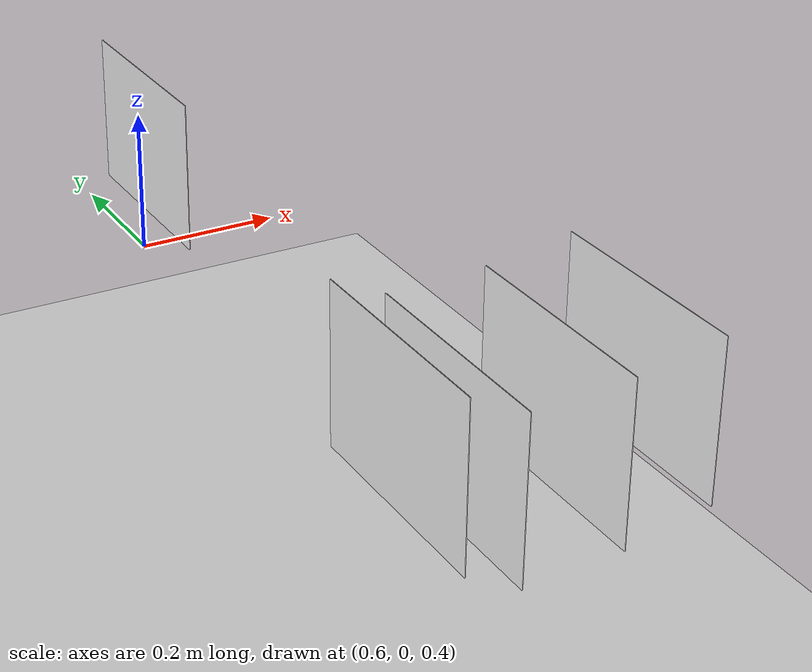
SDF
<sdf version="1.7">
 <world name="default">
  <physics name="normal" type="ode">
   <real_time_update_rate>1000</real_time_update_rate>
   <max_step_size>0.001</max_step_size>
   <real_time_factor>1</real_time_factor>
  </physics>
  <model name="ground_plane">
   <static>1</static>
   <link name="link">
    <collision name="collision">
     <geometry><plane><normal>0 0 1</normal><size>100 100</size></plane></geometry>
     <surface>
      <contact><collide_bitmask>65535</collide_bitmask></contact>
      <friction><ode><mu>100</mu><mu2>50</mu2></ode></friction>
     </surface>
    </collision>
    <visual name="visual">
     <cast_shadows>0</cast_shadows>
     <geometry><plane><normal>0 0 1</normal><size>100 100</size></plane></geometry>
     <material>
      <script><uri>file://media/materials/scripts/gazebo.material</uri><name>Gazebo/Grey</name></script>
     </material>
    </visual>
   </link>
  </model>
  <light name="sun" type="directional">
   <pose>0 0 10 0 -0 0</pose>
   <diffuse>0.8 0.8 0.8 1</diffuse>
   <specular>0.2 0.2 0.2 1</specular>
   <attenuation>
    <range>1000</range>
    <constant>0.9</constant>
    <linear>0.01</linear>
    <quadratic>0.001</quadratic>
   </attenuation>
   <direction>-0.5 0.1 -0.9</direction>
   <spot><inner_angle>0</inner_angle><outer_angle>0</outer_angle><falloff>0</falloff></spot>
  </light>
  <gravity>0 0 -9.8</gravity>
  <magnetic_field>6e-06 2.3e-05 -4.2e-05</magnetic_field>
  <atmosphere type="adiabatic"/>
  <scene><ambient>0.4 0.4 0.4 1</ambient><background>0.7 0.7 0.7 1</background><shadows>1</shadows></scene>
  <spherical_coordinates>
   <surface_model>EARTH_WGS84</surface_model>
   <latitude_deg>0</latitude_deg>
   <longitude_deg>0</longitude_deg>
   <elevation>0</elevation>
   <heading_deg>0</heading_deg>
  </spherical_coordinates>
  <light name="user_point_light_0" type="point">
   <pose>-0.54175 0.748562 1 0 -0 0</pose>
   <diffuse>0.5 0.5 0.5 1</diffuse>
   <specular>0.1 0.1 0.1 1</specular>
   <attenuation>
    <range>20</range>
    <constant>0.5</constant>
    <linear>0.01</linear>
    <quadratic>0.001</quadratic>
   </attenuation>
   <cast_shadows>0</cast_shadows>
   <direction>0 0 -1</direction>
   <spot><inner_angle>0</inner_angle><outer_angle>0</outer_angle><falloff>0</falloff></spot>
  </light>
  <light name="user_point_light_1" type="point">
   <pose>1.07884 2.88556 1 0 -0 0</pose>
   <diffuse>0.5 0.5 0.5 1</diffuse>
   <specular>0.1 0.1 0.1 1</specular>
   <attenuation>
    <range>20</range>
    <constant>0.5</constant>
    <linear>0.01</linear>
    <quadratic>0.001</quadratic>
   </attenuation>
   <cast_shadows>0</cast_shadows>
   <direction>0 0 -1</direction>
   <spot><inner_angle>0</inner_angle><outer_angle>0</outer_angle><falloff>0</falloff></spot>
  </light>
  <light name="user_point_light_2" type="point">
   <pose>1.00577 -0.149182 1 0 -0 0</pose>
   <diffuse>0.5 0.5 0.5 1</diffuse>
   <specular>0.1 0.1 0.1 1</specular>
   <attenuation>
    <range>20</range>
    <constant>0.5</constant>
    <linear>0.01</linear>
    <quadratic>0.001</quadratic>
   </attenuation>
   <cast_shadows>0</cast_shadows>
   <direction>0 0 -1</direction>
   <spot><inner_angle>0</inner_angle><outer_angle>0</outer_angle><falloff>0</falloff></spot>
  </light>
  <model name="marker_0">
   <link name="marker">
    <visual name="visual">
     <geometry><box><size>0.21 0.29 1e-05</size></box></geometry>
     <material>
      <script>
       <uri>model://marker_0/materials/scripts</uri>
       <uri>model://marker_0/materials/textures</uri>
       <name>ArucoVisualMarker0/Marker</name>
      </script>
      <ambient>1 1 1 1</ambient>
      <diffuse>1 1 1 1</diffuse>
      <specular>0 0 0 1</specular>
      <emissive>1 1 1 0</emissive>
      <shader type="vertex"><normal_map>__default__</normal_map></shader>
     </material>
    </visual>
    <collision name="collision"><geometry><box><size>0.21 0.29 1e-05</size></box></geometry></collision>
   </link>
   <link name="marker_pad">
    <pose relative_to="marker">0 0 -0.001 0 -0 0</pose>
    <visual name="visual">
     <geometry><box><size>0.21 0.29 1e-05</size></box></geometry>
     <material>
      <lighting>1</lighting>
      <script><uri>file://media/materials/scripts/gazebo.material</uri><name>Gazebo/White</name></script>
      <ambient>0.3 0.3 0.3 1</ambient>
      <diffuse>0.7 0.7 0.7 1</diffuse>
      <specular>0.01 0.01 0.01 1</specular>
      <emissive>1 1 1 0</emissive>
      <shader type="vertex"><normal_map>__default__</normal_map></shader>
     </material>
    </visual>
    <collision name="collision"><geometry><box><size>0.21 0.29 1e-05</size></box></geometry></collision>
   </link>
   <joint name="marker_JOINT_marker_pad" type="revolute">
    <parent>marker</parent>
    <child>marker_pad</child>
    <axis>
     <xyz>0 0 1</xyz>
     <limit><upper>0</upper><lower>0</lower></limit>
     <dynamics><spring_reference>0</spring_reference><spring_stiffness>0</spring_stiffness></dynamics>
    </axis>
   </joint>
   <static>1</static>
   <pose>0.58821 -0.864663 0.545557 0 -1.5691 0</pose>
  </model>
  <model name="marker_1">
   <link name="marker">
    <visual name="visual">
     <geometry><box><size>0.21 0.29 1e-05</size></box></geometry>
     <material>
      <script>
       <uri>model://marker_1/materials/scripts</uri>
       <uri>model://marker_1/materials/textures</uri>
       <name>ArucoVisualMarker1/Marker</name>
      </script>
      <ambient>1 1 1 1</ambient>
      <diffuse>1 1 1 1</diffuse>
      <specular>0 0 0 1</specular>
      <emissive>1 1 1 0</emissive>
      <shader type="vertex"><normal_map>__default__</normal_map></shader>
     </material>
    </visual>
    <collision name="collision"><geometry><box><size>0.21 0.29 1e-05</size></box></geometry></collision>
   </link>
   <link name="marker_pad">
    <pose relative_to="marker">0 0 -0.001 0 -0 0</pose>
    <visual name="visual">
     <geometry><box><size>0.21 0.29 1e-05</size></box></geometry>
     <material>
      <lighting>1</lighting>
      <script><uri>file://media/materials/scripts/gazebo.material</uri><name>Gazebo/White</name></script>
      <ambient>0.3 0.3 0.3 1</ambient>
      <diffuse>0.7 0.7 0.7 1</diffuse>
      <specular>0.01 0.01 0.01 1</specular>
      <emissive>1 1 1 0</emissive>
      <shader type="vertex"><normal_map>__default__</normal_map></shader>
     </material>
    </visual>
    <collision name="collision"><geometry><box><size>0.21 0.29 1e-05</size></box></geometry></collision>
   </link>
   <joint name="marker_JOINT_marker_pad" type="revolute">
    <parent>marker</parent>
    <child>marker_pad</child>
    <axis>
     <xyz>0 0 1</xyz>
     <limit><upper>0</upper><lower>0</lower></limit>
     <dynamics><spring_reference>0</spring_reference><spring_stiffness>0</spring_stiffness></dynamics>
    </axis>
   </joint>
   <static>1</static>
   <pose>0.722481 -0.854171 0.543447 3.14159 -1.56949 3.14159</pose>
  </model>
  <model name="marker_4">
   <link name="marker">
    <visual name="visual">
     <geometry><box><size>0.21 0.29 1e-05</size></box></geometry>
     <material>
      <script>
       <uri>model://marker_4/materials/scripts</uri>
       <uri>model://marker_4/materials/textures</uri>
       <name>ArucoVisualMarker4/Marker</name>
      </script>
      <ambient>1 1 1 1</ambient>
      <diffuse>1 1 1 1</diffuse>
      <specular>0 0 0 1</specular>
      <emissive>1 1 1 0</emissive>
      <shader type="vertex"><normal_map>__default__</normal_map></shader>
     </material>
    </visual>
    <collision name="collision"><geometry><box><size>0.21 0.29 1e-05</size></box></geometry></collision>
   </link>
   <link name="marker_pad">
    <pose relative_to="marker">0 0 -0.001 0 -0 0</pose>
    <visual name="visual">
     <geometry><box><size>0.21 0.29 1e-05</size></box></geometry>
     <material>
      <lighting>1</lighting>
      <script><uri>file://media/materials/scripts/gazebo.material</uri><name>Gazebo/White</name></script>
      <ambient>0.3 0.3 0.3 1</ambient>
      <diffuse>0.7 0.7 0.7 1</diffuse>
      <specular>0.01 0.01 0.01 1</specular>
      <emissive>1 1 1 0</emissive>
      <shader type="vertex"><normal_map>__default__</normal_map></shader>
     </material>
    </visual>
    <collision name="collision"><geometry><box><size>0.21 0.29 1e-05</size></box></geometry></collision>
   </link>
   <joint name="marker_JOINT_marker_pad" type="revolute">
    <parent>marker</parent>
    <child>marker_pad</child>
    <axis>
     <xyz>0 0 1</xyz>
     <limit><upper>0</upper><lower>0</lower></limit>
     <dynamics><spring_reference>0</spring_reference><spring_stiffness>0</spring_stiffness></dynamics>
    </axis>
   </joint>
   <static>1</static>
   <pose>0.851409 -0.833346 0.547914 0 -1.56969 0</pose>
  </model>
  <model name="marker_3">
   <link name="marker">
    <visual name="visual">
     <geometry><box><size>0.21 0.29 1e-05</size></box></geometry>
     <material>
      <script>
       <uri>model://marker_3/materials/scripts</uri>
       <uri>model://marker_3/materials/textures</uri>
       <name>ArucoVisualMarker3/Marker</name>
      </script>
      <ambient>1 1 1 1</ambient>
      <diffuse>1 1 1 1</diffuse>
      <specular>0 0 0 1</specular>
      <emissive>1 1 1 0</emissive>
      <shader type="vertex"><normal_map>__default__</normal_map></shader>
     </material>
    </visual>
    <collision name="collision"><geometry><box><size>0.21 0.29 1e-05</size></box></geometry></collision>
   </link>
   <link name="marker_pad">
    <pose relative_to="marker">0 0 -0.001 0 -0 0</pose>
    <visual name="visual">
     <geometry><box><size>0.21 0.29 1e-05</size></box></geometry>
     <material>
      <lighting>1</lighting>
      <script><uri>file://media/materials/scripts/gazebo.material</uri><name>Gazebo/White</name></script>
      <ambient>0.3 0.3 0.3 1</ambient>
      <diffuse>0.7 0.7 0.7 1</diffuse>
      <specular>0.01 0.01 0.01 1</specular>
      <emissive>1 1 1 0</emissive>
      <shader type="vertex"><normal_map>__default__</normal_map></shader>
     </material>
    </visual>
    <collision name="collision"><geometry><box><size>0.21 0.29 1e-05</size></box></geometry></collision>
   </link>
   <joint name="marker_JOINT_marker_pad" type="revolute">
    <parent>marker</parent>
    <child>marker_pad</child>
    <axis>
     <xyz>0 0 1</xyz>
     <limit><upper>0</upper><lower>0</lower></limit>
     <dynamics><spring_reference>0</spring_reference><spring_stiffness>0</spring_stiffness></dynamics>
    </axis>
   </joint>
   <static>1</static>
   <pose>0.607741 0 0.558379 0 -1.56737 0</pose>
  </model>
  <model name="marker_2">
   <link name="marker">
    <visual name="visual">
     <geometry><box><size>0.21 0.29 1e-05</size></box></geometry>
     <material>
      <script>
       <uri>model://marker_2/materials/scripts</uri>
       <uri>model://marker_2/materials/textures</uri>
       <name>ArucoVisualMarker2/Marker</name>
      </script>
      <ambient>1 1 1 1</ambient>
      <diffuse>1 1 1 1</diffuse>
      <specular>0 0 0 1</specular>
      <emissive>1 1 1 0</emissive>
      <shader type="vertex"><normal_map>__default__</normal_map></shader>
     </material>
    </visual>
    <collision name="collision"><geometry><box><size>0.21 0.29 1e-05</size></box></geometry></collision>
   </link>
   <link name="marker_pad">
    <pose relative_to="marker">0 0 -0.001 0 -0 0</pose>
    <visual name="visual">
     <geometry><box><size>0.21 0.29 1e-05</size></box></geometry>
     <material>
      <lighting>1</lighting>
      <script><uri>file://media/materials/scripts/gazebo.material</uri><name>Gazebo/White</name></script>
      <ambient>0.3 0.3 0.3 1</ambient>
      <diffuse>0.7 0.7 0.7 1</diffuse>
      <specular>0.01 0.01 0.01 1</specular>
      <emissive>1 1 1 0</emissive>
      <shader type="vertex"><normal_map>__default__</normal_map></shader>
     </material>
    </visual>
    <collision name="collision"><geometry><box><size>0.21 0.29 1e-05</size></box></geometry></collision>
   </link>
   <joint name="marker_JOINT_marker_pad" type="revolute">
    <parent>marker</parent>
    <child>marker_pad</child>
    <axis>
     <xyz>0 0 1</xyz>
     <limit><upper>0</upper><lower>0</lower></limit>
     <dynamics><spring_reference>0</spring_reference><spring_stiffness>0</spring_stiffness></dynamics>
    </axis>
   </joint>
   <static>1</static>
   <pose>0.531108 -0.844656 0.56736 3.14159 -1.56857 3.14159</pose>
  </model>
 </world>
</sdf>
